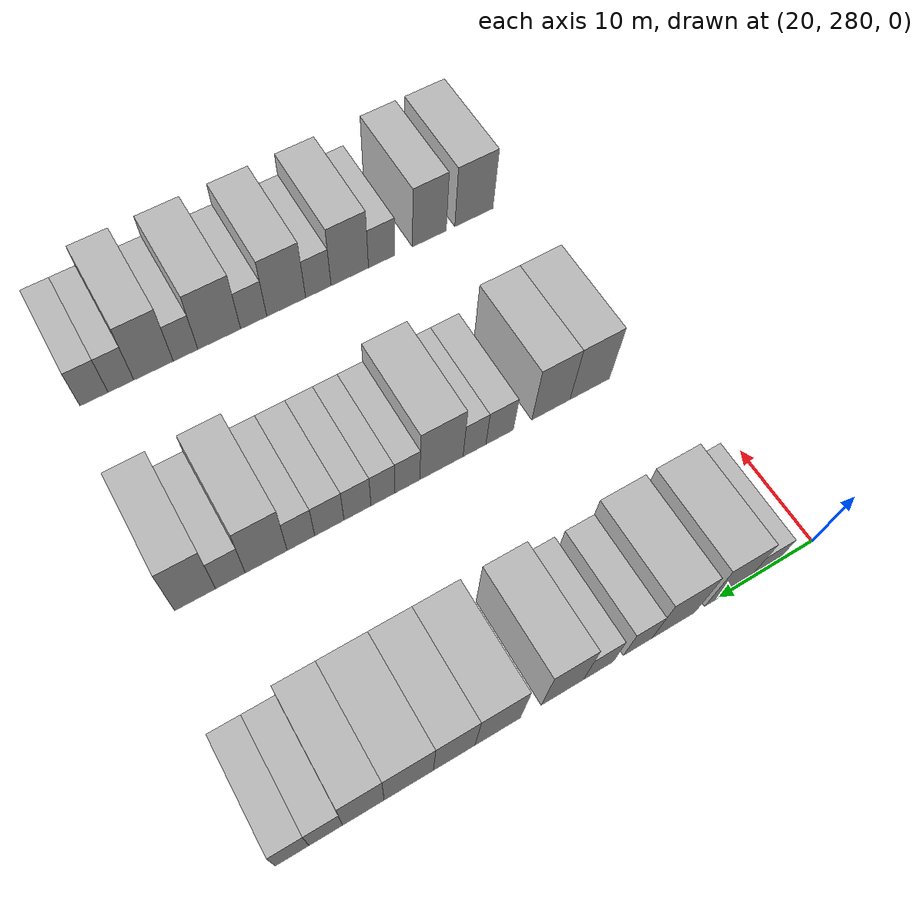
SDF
<sdf version="1.6">
 <world name="default">
  <model name="building_163">
   <static>1</static>
   <pose>25.0000 285.6499 0 0.000000 0.000000 0.000000</pose>
   <link name="link">
    <pose>0 0 3.00 0 0 0</pose>
    <collision name="collision"><geometry><box><size>10.0000 2.9635 6.0000</size></box></geometry></collision>
    <visual name="visual">
     <cast_shadows>0</cast_shadows>
     <geometry><box><size>10.0000 2.9635 6.0000</size></box></geometry>
     <material>
      <script>
       <uri>model://HANNAS_wall/materials/scripts</uri>
       <uri>model://HANNAS_wall/materials/textures</uri>
       <name>vrc/HANNAS_wall</name>
      </script>
     </material>
    </visual>
   </link>
  </model>
  <model name="building_164">
   <static>1</static>
   <pose>25.0000 289.3441 0 0.000000 0.000000 0.000000</pose>
   <link name="link">
    <pose>0 0 4.50 0 0 0</pose>
    <collision name="collision"><geometry><box><size>10.0000 4.4247 9.0000</size></box></geometry></collision>
    <visual name="visual">
     <cast_shadows>0</cast_shadows>
     <geometry><box><size>10.0000 4.4247 9.0000</size></box></geometry>
     <material>
      <script>
       <uri>model://HANNAS_wall/materials/scripts</uri>
       <uri>model://HANNAS_wall/materials/textures</uri>
       <name>vrc/HANNAS_wall</name>
      </script>
     </material>
    </visual>
   </link>
  </model>
  <model name="building_165">
   <static>1</static>
   <pose>25.0000 294.7782 0 0.000000 0.000000 0.000000</pose>
   <link name="link">
    <pose>0 0 4.50 0 0 0</pose>
    <collision name="collision"><geometry><box><size>10.0000 4.4436 9.0000</size></box></geometry></collision>
    <visual name="visual">
     <cast_shadows>0</cast_shadows>
     <geometry><box><size>10.0000 4.4436 9.0000</size></box></geometry>
     <material>
      <script>
       <uri>model://HANNAS_wall/materials/scripts</uri>
       <uri>model://HANNAS_wall/materials/textures</uri>
       <name>vrc/HANNAS_wall</name>
      </script>
     </material>
    </visual>
   </link>
  </model>
  <model name="building_166">
   <static>1</static>
   <pose>25.0000 298.4366 0 0.000000 0.000000 0.000000</pose>
   <link name="link">
    <pose>0 0 3.00 0 0 0</pose>
    <collision name="collision"><geometry><box><size>10.0000 2.8733 6.0000</size></box></geometry></collision>
    <visual name="visual">
     <cast_shadows>0</cast_shadows>
     <geometry><box><size>10.0000 2.8733 6.0000</size></box></geometry>
     <material>
      <script>
       <uri>model://HANNAS_wall/materials/scripts</uri>
       <uri>model://HANNAS_wall/materials/textures</uri>
       <name>vrc/HANNAS_wall</name>
      </script>
     </material>
    </visual>
   </link>
  </model>
  <model name="building_167">
   <static>1</static>
   <pose>25.0000 302.3572 0 0.000000 0.000000 0.000000</pose>
   <link name="link">
    <pose>0 0 3.00 0 0 0</pose>
    <collision name="collision"><geometry><box><size>10.0000 2.9680 6.0000</size></box></geometry></collision>
    <visual name="visual">
     <cast_shadows>0</cast_shadows>
     <geometry><box><size>10.0000 2.9680 6.0000</size></box></geometry>
     <material>
      <script>
       <uri>model://HANNAS_wall/materials/scripts</uri>
       <uri>model://HANNAS_wall/materials/textures</uri>
       <name>vrc/HANNAS_wall</name>
      </script>
     </material>
    </visual>
   </link>
  </model>
  <model name="building_168">
   <static>1</static>
   <pose>25.0000 305.8945 0 0.000000 0.000000 0.000000</pose>
   <link name="link">
    <pose>0 0 4.50 0 0 0</pose>
    <collision name="collision"><geometry><box><size>10.0000 4.1065 9.0000</size></box></geometry></collision>
    <visual name="visual">
     <cast_shadows>0</cast_shadows>
     <geometry><box><size>10.0000 4.1065 9.0000</size></box></geometry>
     <material>
      <script>
       <uri>model://HANNAS_wall/materials/scripts</uri>
       <uri>model://HANNAS_wall/materials/textures</uri>
       <name>vrc/HANNAS_wall</name>
      </script>
     </material>
    </visual>
   </link>
  </model>
  <model name="building_169">
   <static>1</static>
   <pose>25.0000 312.0958 0 0.000000 0.000000 0.000000</pose>
   <link name="link">
    <pose>0 0 4.50 0 0 0</pose>
    <collision name="collision"><geometry><box><size>10.0000 4.2961 9.0000</size></box></geometry></collision>
    <visual name="visual">
     <cast_shadows>0</cast_shadows>
     <geometry><box><size>10.0000 4.2961 9.0000</size></box></geometry>
     <material>
      <script>
       <uri>model://HANNAS_wall/materials/scripts</uri>
       <uri>model://HANNAS_wall/materials/textures</uri>
       <name>vrc/HANNAS_wall</name>
      </script>
     </material>
    </visual>
   </link>
  </model>
  <model name="building_170">
   <static>1</static>
   <pose>25.0000 316.1616 0 0.000000 0.000000 0.000000</pose>
   <link name="link">
    <pose>0 0 4.50 0 0 0</pose>
    <collision name="collision"><geometry><box><size>10.0000 3.8355 9.0000</size></box></geometry></collision>
    <visual name="visual">
     <cast_shadows>0</cast_shadows>
     <geometry><box><size>10.0000 3.8355 9.0000</size></box></geometry>
     <material>
      <script>
       <uri>model://HANNAS_wall/materials/scripts</uri>
       <uri>model://HANNAS_wall/materials/textures</uri>
       <name>vrc/HANNAS_wall</name>
      </script>
     </material>
    </visual>
   </link>
  </model>
  <model name="building_171">
   <static>1</static>
   <pose>25.0000 320.2941 0 0.000000 0.000000 0.000000</pose>
   <link name="link">
    <pose>0 0 4.50 0 0 0</pose>
    <collision name="collision"><geometry><box><size>10.0000 4.4296 9.0000</size></box></geometry></collision>
    <visual name="visual">
     <cast_shadows>0</cast_shadows>
     <geometry><box><size>10.0000 4.4296 9.0000</size></box></geometry>
     <material>
      <script>
       <uri>model://HANNAS_wall/materials/scripts</uri>
       <uri>model://HANNAS_wall/materials/textures</uri>
       <name>vrc/HANNAS_wall</name>
      </script>
     </material>
    </visual>
   </link>
  </model>
  <model name="building_172">
   <static>1</static>
   <pose>25.0000 324.3501 0 0.000000 0.000000 0.000000</pose>
   <link name="link">
    <pose>0 0 4.50 0 0 0</pose>
    <collision name="collision"><geometry><box><size>10.0000 3.6823 9.0000</size></box></geometry></collision>
    <visual name="visual">
     <cast_shadows>0</cast_shadows>
     <geometry><box><size>10.0000 3.6823 9.0000</size></box></geometry>
     <material>
      <script>
       <uri>model://HANNAS_wall/materials/scripts</uri>
       <uri>model://HANNAS_wall/materials/textures</uri>
       <name>vrc/HANNAS_wall</name>
      </script>
     </material>
    </visual>
   </link>
  </model>
  <model name="building_173">
   <static>1</static>
   <pose>25.0000 327.6497 0 0.000000 0.000000 0.000000</pose>
   <link name="link">
    <pose>0 0 3.00 0 0 0</pose>
    <collision name="collision"><geometry><box><size>10.0000 2.9170 6.0000</size></box></geometry></collision>
    <visual name="visual">
     <cast_shadows>0</cast_shadows>
     <geometry><box><size>10.0000 2.9170 6.0000</size></box></geometry>
     <material>
      <script>
       <uri>model://HANNAS_wall/materials/scripts</uri>
       <uri>model://HANNAS_wall/materials/textures</uri>
       <name>vrc/HANNAS_wall</name>
      </script>
     </material>
    </visual>
   </link>
  </model>
  <model name="building_174">
   <static>1</static>
   <pose>25.0000 330.5495 0 0.000000 0.000000 0.000000</pose>
   <link name="link">
    <pose>0 0 3.00 0 0 0</pose>
    <collision name="collision"><geometry><box><size>10.0000 2.8825 6.0000</size></box></geometry></collision>
    <visual name="visual">
     <cast_shadows>0</cast_shadows>
     <geometry><box><size>10.0000 2.8825 6.0000</size></box></geometry>
     <material>
      <script>
       <uri>model://HANNAS_wall/materials/scripts</uri>
       <uri>model://HANNAS_wall/materials/textures</uri>
       <name>vrc/HANNAS_wall</name>
      </script>
     </material>
    </visual>
   </link>
  </model>
  <model name="building_345">
   <static>1</static>
   <pose>47.0000 288.2024 0 0.000000 0.000000 0.000000</pose>
   <link name="link">
    <pose>0 0 4.50 0 0 0</pose>
    <collision name="collision"><geometry><box><size>10.0000 4.3919 9.0000</size></box></geometry></collision>
    <visual name="visual">
     <cast_shadows>0</cast_shadows>
     <geometry><box><size>10.0000 4.3919 9.0000</size></box></geometry>
     <material>
      <script>
       <uri>model://HANNAS_wall/materials/scripts</uri>
       <uri>model://HANNAS_wall/materials/textures</uri>
       <name>vrc/HANNAS_wall</name>
      </script>
     </material>
    </visual>
   </link>
  </model>
  <model name="building_346">
   <static>1</static>
   <pose>47.0000 292.4870 0 0.000000 0.000000 0.000000</pose>
   <link name="link">
    <pose>0 0 4.50 0 0 0</pose>
    <collision name="collision"><geometry><box><size>10.0000 4.1773 9.0000</size></box></geometry></collision>
    <visual name="visual">
     <cast_shadows>0</cast_shadows>
     <geometry><box><size>10.0000 4.1773 9.0000</size></box></geometry>
     <material>
      <script>
       <uri>model://HANNAS_wall/materials/scripts</uri>
       <uri>model://HANNAS_wall/materials/textures</uri>
       <name>vrc/HANNAS_wall</name>
      </script>
     </material>
    </visual>
   </link>
  </model>
  <model name="building_347">
   <static>1</static>
   <pose>47.0000 298.0423 0 0.000000 0.000000 0.000000</pose>
   <link name="link">
    <pose>0 0 3.00 0 0 0</pose>
    <collision name="collision"><geometry><box><size>10.0000 2.9334 6.0000</size></box></geometry></collision>
    <visual name="visual">
     <cast_shadows>0</cast_shadows>
     <geometry><box><size>10.0000 2.9334 6.0000</size></box></geometry>
     <material>
      <script>
       <uri>model://HANNAS_wall/materials/scripts</uri>
       <uri>model://HANNAS_wall/materials/textures</uri>
       <name>vrc/HANNAS_wall</name>
      </script>
     </material>
    </visual>
   </link>
  </model>
  <model name="building_348">
   <static>1</static>
   <pose>47.0000 300.7106 0 0.000000 0.000000 0.000000</pose>
   <link name="link">
    <pose>0 0 3.00 0 0 0</pose>
    <collision name="collision"><geometry><box><size>10.0000 2.4031 6.0000</size></box></geometry></collision>
    <visual name="visual">
     <cast_shadows>0</cast_shadows>
     <geometry><box><size>10.0000 2.4031 6.0000</size></box></geometry>
     <material>
      <script>
       <uri>model://HANNAS_wall/materials/scripts</uri>
       <uri>model://HANNAS_wall/materials/textures</uri>
       <name>vrc/HANNAS_wall</name>
      </script>
     </material>
    </visual>
   </link>
  </model>
  <model name="building_349">
   <static>1</static>
   <pose>47.0000 304.1563 0 0.000000 0.000000 0.000000</pose>
   <link name="link">
    <pose>0 0 4.50 0 0 0</pose>
    <collision name="collision"><geometry><box><size>10.0000 4.4883 9.0000</size></box></geometry></collision>
    <visual name="visual">
     <cast_shadows>0</cast_shadows>
     <geometry><box><size>10.0000 4.4883 9.0000</size></box></geometry>
     <material>
      <script>
       <uri>model://HANNAS_wall/materials/scripts</uri>
       <uri>model://HANNAS_wall/materials/textures</uri>
       <name>vrc/HANNAS_wall</name>
      </script>
     </material>
    </visual>
   </link>
  </model>
  <model name="building_350">
   <static>1</static>
   <pose>47.0000 307.6731 0 0.000000 0.000000 0.000000</pose>
   <link name="link">
    <pose>0 0 3.00 0 0 0</pose>
    <collision name="collision"><geometry><box><size>10.0000 2.5453 6.0000</size></box></geometry></collision>
    <visual name="visual">
     <cast_shadows>0</cast_shadows>
     <geometry><box><size>10.0000 2.5453 6.0000</size></box></geometry>
     <material>
      <script>
       <uri>model://HANNAS_wall/materials/scripts</uri>
       <uri>model://HANNAS_wall/materials/textures</uri>
       <name>vrc/HANNAS_wall</name>
      </script>
     </material>
    </visual>
   </link>
  </model>
  <model name="building_351">
   <static>1</static>
   <pose>47.0000 310.1562 0 0.000000 0.000000 0.000000</pose>
   <link name="link">
    <pose>0 0 3.00 0 0 0</pose>
    <collision name="collision"><geometry><box><size>10.0000 2.4208 6.0000</size></box></geometry></collision>
    <visual name="visual">
     <cast_shadows>0</cast_shadows>
     <geometry><box><size>10.0000 2.4208 6.0000</size></box></geometry>
     <material>
      <script>
       <uri>model://HANNAS_wall/materials/scripts</uri>
       <uri>model://HANNAS_wall/materials/textures</uri>
       <name>vrc/HANNAS_wall</name>
      </script>
     </material>
    </visual>
   </link>
  </model>
  <model name="building_352">
   <static>1</static>
   <pose>47.0000 312.7136 0 0.000000 0.000000 0.000000</pose>
   <link name="link">
    <pose>0 0 3.00 0 0 0</pose>
    <collision name="collision"><geometry><box><size>10.0000 2.6940 6.0000</size></box></geometry></collision>
    <visual name="visual">
     <cast_shadows>0</cast_shadows>
     <geometry><box><size>10.0000 2.6940 6.0000</size></box></geometry>
     <material>
      <script>
       <uri>model://HANNAS_wall/materials/scripts</uri>
       <uri>model://HANNAS_wall/materials/textures</uri>
       <name>vrc/HANNAS_wall</name>
      </script>
     </material>
    </visual>
   </link>
  </model>
  <model name="building_353">
   <static>1</static>
   <pose>47.0000 315.5045 0 0.000000 0.000000 0.000000</pose>
   <link name="link">
    <pose>0 0 3.00 0 0 0</pose>
    <collision name="collision"><geometry><box><size>10.0000 2.8879 6.0000</size></box></geometry></collision>
    <visual name="visual">
     <cast_shadows>0</cast_shadows>
     <geometry><box><size>10.0000 2.8879 6.0000</size></box></geometry>
     <material>
      <script>
       <uri>model://HANNAS_wall/materials/scripts</uri>
       <uri>model://HANNAS_wall/materials/textures</uri>
       <name>vrc/HANNAS_wall</name>
      </script>
     </material>
    </visual>
   </link>
  </model>
  <model name="building_354">
   <static>1</static>
   <pose>47.0000 318.2898 0 0.000000 0.000000 0.000000</pose>
   <link name="link">
    <pose>0 0 3.00 0 0 0</pose>
    <collision name="collision"><geometry><box><size>10.0000 2.6826 6.0000</size></box></geometry></collision>
    <visual name="visual">
     <cast_shadows>0</cast_shadows>
     <geometry><box><size>10.0000 2.6826 6.0000</size></box></geometry>
     <material>
      <script>
       <uri>model://HANNAS_wall/materials/scripts</uri>
       <uri>model://HANNAS_wall/materials/textures</uri>
       <name>vrc/HANNAS_wall</name>
      </script>
     </material>
    </visual>
   </link>
  </model>
  <model name="building_355">
   <static>1</static>
   <pose>47.0000 321.6393 0 0.000000 0.000000 0.000000</pose>
   <link name="link">
    <pose>0 0 4.50 0 0 0</pose>
    <collision name="collision"><geometry><box><size>10.0000 4.0165 9.0000</size></box></geometry></collision>
    <visual name="visual">
     <cast_shadows>0</cast_shadows>
     <geometry><box><size>10.0000 4.0165 9.0000</size></box></geometry>
     <material>
      <script>
       <uri>model://HANNAS_wall/materials/scripts</uri>
       <uri>model://HANNAS_wall/materials/textures</uri>
       <name>vrc/HANNAS_wall</name>
      </script>
     </material>
    </visual>
   </link>
  </model>
  <model name="building_356">
   <static>1</static>
   <pose>47.0000 325.0442 0 0.000000 0.000000 0.000000</pose>
   <link name="link">
    <pose>0 0 3.00 0 0 0</pose>
    <collision name="collision"><geometry><box><size>10.0000 2.7934 6.0000</size></box></geometry></collision>
    <visual name="visual">
     <cast_shadows>0</cast_shadows>
     <geometry><box><size>10.0000 2.7934 6.0000</size></box></geometry>
     <material>
      <script>
       <uri>model://HANNAS_wall/materials/scripts</uri>
       <uri>model://HANNAS_wall/materials/textures</uri>
       <name>vrc/HANNAS_wall</name>
      </script>
     </material>
    </visual>
   </link>
  </model>
  <model name="building_357">
   <static>1</static>
   <pose>47.0000 328.3432 0 0.000000 0.000000 0.000000</pose>
   <link name="link">
    <pose>0 0 4.50 0 0 0</pose>
    <collision name="collision"><geometry><box><size>10.0000 3.8045 9.0000</size></box></geometry></collision>
    <visual name="visual">
     <cast_shadows>0</cast_shadows>
     <geometry><box><size>10.0000 3.8045 9.0000</size></box></geometry>
     <material>
      <script>
       <uri>model://HANNAS_wall/materials/scripts</uri>
       <uri>model://HANNAS_wall/materials/textures</uri>
       <name>vrc/HANNAS_wall</name>
      </script>
     </material>
    </visual>
   </link>
  </model>
  <model name="building_528">
   <static>1</static>
   <pose>69.0000 287.2105 0 0.000000 0.000000 0.000000</pose>
   <link name="link">
    <pose>0 0 4.50 0 0 0</pose>
    <collision name="collision"><geometry><box><size>10.0000 4.4873 9.0000</size></box></geometry></collision>
    <visual name="visual">
     <cast_shadows>0</cast_shadows>
     <geometry><box><size>10.0000 4.4873 9.0000</size></box></geometry>
     <material>
      <script>
       <uri>model://HANNAS_wall/materials/scripts</uri>
       <uri>model://HANNAS_wall/materials/textures</uri>
       <name>vrc/HANNAS_wall</name>
      </script>
     </material>
    </visual>
   </link>
  </model>
  <model name="building_529">
   <static>1</static>
   <pose>69.0000 292.4014 0 0.000000 0.000000 0.000000</pose>
   <link name="link">
    <pose>0 0 4.50 0 0 0</pose>
    <collision name="collision"><geometry><box><size>10.0000 3.8945 9.0000</size></box></geometry></collision>
    <visual name="visual">
     <cast_shadows>0</cast_shadows>
     <geometry><box><size>10.0000 3.8945 9.0000</size></box></geometry>
     <material>
      <script>
       <uri>model://HANNAS_wall/materials/scripts</uri>
       <uri>model://HANNAS_wall/materials/textures</uri>
       <name>vrc/HANNAS_wall</name>
      </script>
     </material>
    </visual>
   </link>
  </model>
  <model name="building_530">
   <static>1</static>
   <pose>69.0000 297.8388 0 0.000000 0.000000 0.000000</pose>
   <link name="link">
    <pose>0 0 3.00 0 0 0</pose>
    <collision name="collision"><geometry><box><size>10.0000 2.9802 6.0000</size></box></geometry></collision>
    <visual name="visual">
     <cast_shadows>0</cast_shadows>
     <geometry><box><size>10.0000 2.9802 6.0000</size></box></geometry>
     <material>
      <script>
       <uri>model://HANNAS_wall/materials/scripts</uri>
       <uri>model://HANNAS_wall/materials/textures</uri>
       <name>vrc/HANNAS_wall</name>
      </script>
     </material>
    </visual>
   </link>
  </model>
  <model name="building_531">
   <static>1</static>
   <pose>69.0000 301.4048 0 0.000000 0.000000 0.000000</pose>
   <link name="link">
    <pose>0 0 4.50 0 0 0</pose>
    <collision name="collision"><geometry><box><size>10.0000 4.1517 9.0000</size></box></geometry></collision>
    <visual name="visual">
     <cast_shadows>0</cast_shadows>
     <geometry><box><size>10.0000 4.1517 9.0000</size></box></geometry>
     <material>
      <script>
       <uri>model://HANNAS_wall/materials/scripts</uri>
       <uri>model://HANNAS_wall/materials/textures</uri>
       <name>vrc/HANNAS_wall</name>
      </script>
     </material>
    </visual>
   </link>
  </model>
  <model name="building_532">
   <static>1</static>
   <pose>69.0000 304.8759 0 0.000000 0.000000 0.000000</pose>
   <link name="link">
    <pose>0 0 3.00 0 0 0</pose>
    <collision name="collision"><geometry><box><size>10.0000 2.7906 6.0000</size></box></geometry></collision>
    <visual name="visual">
     <cast_shadows>0</cast_shadows>
     <geometry><box><size>10.0000 2.7906 6.0000</size></box></geometry>
     <material>
      <script>
       <uri>model://HANNAS_wall/materials/scripts</uri>
       <uri>model://HANNAS_wall/materials/textures</uri>
       <name>vrc/HANNAS_wall</name>
      </script>
     </material>
    </visual>
   </link>
  </model>
  <model name="building_533">
   <static>1</static>
   <pose>69.0000 308.3660 0 0.000000 0.000000 0.000000</pose>
   <link name="link">
    <pose>0 0 4.50 0 0 0</pose>
    <collision name="collision"><geometry><box><size>10.0000 4.1896 9.0000</size></box></geometry></collision>
    <visual name="visual">
     <cast_shadows>0</cast_shadows>
     <geometry><box><size>10.0000 4.1896 9.0000</size></box></geometry>
     <material>
      <script>
       <uri>model://HANNAS_wall/materials/scripts</uri>
       <uri>model://HANNAS_wall/materials/textures</uri>
       <name>vrc/HANNAS_wall</name>
      </script>
     </material>
    </visual>
   </link>
  </model>
  <model name="building_534">
   <static>1</static>
   <pose>69.0000 311.8536 0 0.000000 0.000000 0.000000</pose>
   <link name="link">
    <pose>0 0 3.00 0 0 0</pose>
    <collision name="collision"><geometry><box><size>10.0000 2.7856 6.0000</size></box></geometry></collision>
    <visual name="visual">
     <cast_shadows>0</cast_shadows>
     <geometry><box><size>10.0000 2.7856 6.0000</size></box></geometry>
     <material>
      <script>
       <uri>model://HANNAS_wall/materials/scripts</uri>
       <uri>model://HANNAS_wall/materials/textures</uri>
       <name>vrc/HANNAS_wall</name>
      </script>
     </material>
    </visual>
   </link>
  </model>
  <model name="building_535">
   <static>1</static>
   <pose>69.0000 315.4852 0 0.000000 0.000000 0.000000</pose>
   <link name="link">
    <pose>0 0 4.50 0 0 0</pose>
    <collision name="collision"><geometry><box><size>10.0000 4.4777 9.0000</size></box></geometry></collision>
    <visual name="visual">
     <cast_shadows>0</cast_shadows>
     <geometry><box><size>10.0000 4.4777 9.0000</size></box></geometry>
     <material>
      <script>
       <uri>model://HANNAS_wall/materials/scripts</uri>
       <uri>model://HANNAS_wall/materials/textures</uri>
       <name>vrc/HANNAS_wall</name>
      </script>
     </material>
    </visual>
   </link>
  </model>
  <model name="building_536">
   <static>1</static>
   <pose>69.0000 318.9934 0 0.000000 0.000000 0.000000</pose>
   <link name="link">
    <pose>0 0 3.00 0 0 0</pose>
    <collision name="collision"><geometry><box><size>10.0000 2.5387 6.0000</size></box></geometry></collision>
    <visual name="visual">
     <cast_shadows>0</cast_shadows>
     <geometry><box><size>10.0000 2.5387 6.0000</size></box></geometry>
     <material>
      <script>
       <uri>model://HANNAS_wall/materials/scripts</uri>
       <uri>model://HANNAS_wall/materials/textures</uri>
       <name>vrc/HANNAS_wall</name>
      </script>
     </material>
    </visual>
   </link>
  </model>
  <model name="building_537">
   <static>1</static>
   <pose>69.0000 322.2655 0 0.000000 0.000000 0.000000</pose>
   <link name="link">
    <pose>0 0 4.50 0 0 0</pose>
    <collision name="collision"><geometry><box><size>10.0000 4.0055 9.0000</size></box></geometry></collision>
    <visual name="visual">
     <cast_shadows>0</cast_shadows>
     <geometry><box><size>10.0000 4.0055 9.0000</size></box></geometry>
     <material>
      <script>
       <uri>model://HANNAS_wall/materials/scripts</uri>
       <uri>model://HANNAS_wall/materials/textures</uri>
       <name>vrc/HANNAS_wall</name>
      </script>
     </material>
    </visual>
   </link>
  </model>
  <model name="building_538">
   <static>1</static>
   <pose>69.0000 325.5586 0 0.000000 0.000000 0.000000</pose>
   <link name="link">
    <pose>0 0 3.00 0 0 0</pose>
    <collision name="collision"><geometry><box><size>10.0000 2.5808 6.0000</size></box></geometry></collision>
    <visual name="visual">
     <cast_shadows>0</cast_shadows>
     <geometry><box><size>10.0000 2.5808 6.0000</size></box></geometry>
     <material>
      <script>
       <uri>model://HANNAS_wall/materials/scripts</uri>
       <uri>model://HANNAS_wall/materials/textures</uri>
       <name>vrc/HANNAS_wall</name>
      </script>
     </material>
    </visual>
   </link>
  </model>
  <model name="building_539">
   <static>1</static>
   <pose>69.0000 328.2485 0 0.000000 0.000000 0.000000</pose>
   <link name="link">
    <pose>0 0 3.00 0 0 0</pose>
    <collision name="collision"><geometry><box><size>10.0000 2.7990 6.0000</size></box></geometry></collision>
    <visual name="visual">
     <cast_shadows>0</cast_shadows>
     <geometry><box><size>10.0000 2.7990 6.0000</size></box></geometry>
     <material>
      <script>
       <uri>model://HANNAS_wall/materials/scripts</uri>
       <uri>model://HANNAS_wall/materials/textures</uri>
       <name>vrc/HANNAS_wall</name>
      </script>
     </material>
    </visual>
   </link>
  </model>
 </world>
</sdf>
